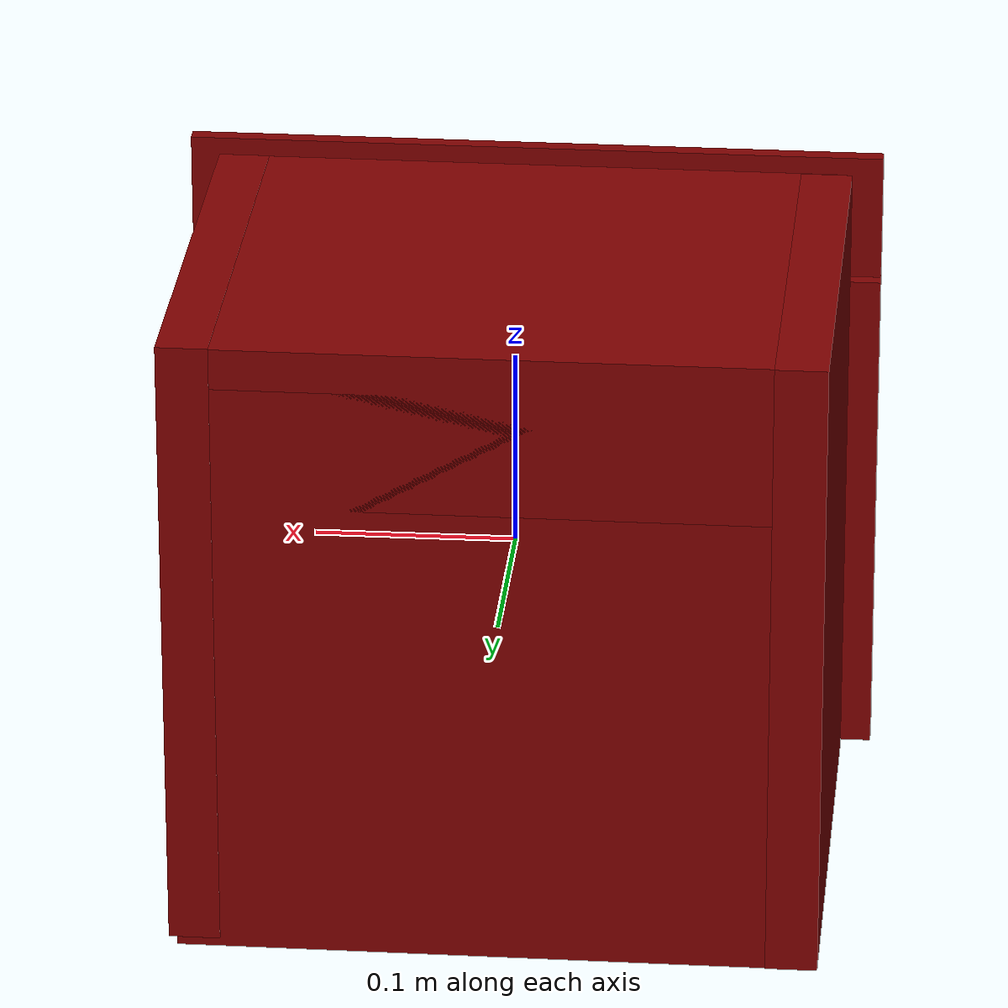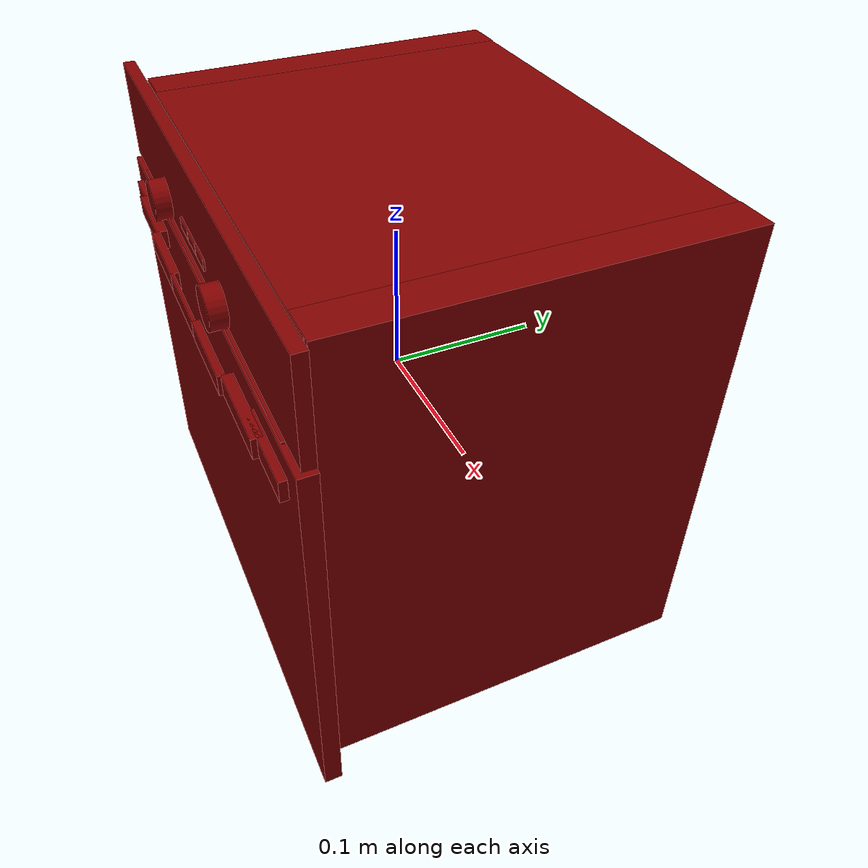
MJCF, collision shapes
<mujoco model="model">
  <compiler angle="radian"/>
  <asset>
    <mesh file="visuals/Body001.obj" name="Body001_vis"/>
    <mesh file="visuals/Button001.obj" name="Button001_vis"/>
    <mesh file="visuals/Button002.obj" name="Button002_vis"/>
    <mesh file="visuals/Button003.obj" name="Button003_vis"/>
    <mesh file="visuals/Door001.obj" name="Door001_vis"/>
    <mesh file="visuals/Door001_Clear.obj" name="Door001_Clear_vis"/>
    <mesh file="visuals/Knob001.obj" name="Knob001_vis"/>
    <mesh file="visuals/Knob002.obj" name="Knob002_vis"/>
    <mesh file="visuals/Shelf001.obj" name="Shelf001_vis"/>
    <texture file="visuals/T_BC001.png" name="Body001_material" type="2d"/>
    <material name="Body001_material" rgba="1 1 1 1.0" texture="Body001_material" shininess="0.5" specular="1"/>
    <texture file="visuals/T_BC001.png" name="Button001_material" type="2d"/>
    <material name="Button001_material" rgba="1 1 1 1.0" texture="Button001_material" shininess="0.5" specular="0.3103448502657381"/>
    <texture file="visuals/T_BC001.png" name="Button002_material" type="2d"/>
    <material name="Button002_material" rgba="1 1 1 1.0" texture="Button002_material" shininess="0.5" specular="0.3103448502657381"/>
    <texture file="visuals/T_BC001.png" name="Button003_material" type="2d"/>
    <material name="Button003_material" rgba="1 1 1 1.0" texture="Button003_material" shininess="0.5" specular="0.3103448502657381"/>
    <texture file="visuals/T_BC001.png" name="Door001_material" type="2d"/>
    <material name="Door001_material" rgba="1 1 1 1.0" texture="Door001_material" shininess="0.5" specular="1"/>
    <texture file="visuals/T_BC001.png" name="Door001_Clear_material" type="2d"/>
    <material name="Door001_Clear_material" rgba="1 1 1 0.8857143521308899" texture="Door001_Clear_material" shininess="0.5" specular="1"/>
    <texture file="visuals/T_BC001.png" name="Knob001_material" type="2d"/>
    <material name="Knob001_material" rgba="1 1 1 1.0" texture="Knob001_material" shininess="0.5" specular="1"/>
    <texture file="visuals/T_BC001.png" name="Knob002_material" type="2d"/>
    <material name="Knob002_material" rgba="1 1 1 1.0" texture="Knob002_material" shininess="0.5" specular="1"/>
    <texture file="visuals/T_BC001.png" name="Shelf001_material" type="2d"/>
    <material name="Shelf001_material" rgba="1 1 1 1.0" texture="Shelf001_material" shininess="0.5" specular="3"/>
  </asset>
  <default>
    <default class="visual">
      <geom conaffinity="0" contype="0" group="1" type="mesh"/>
    </default>
    <default class="collision">
      <geom group="0" rgba="0.5 0 0 0.5"/>
    </default>
    <default class="spawn">
      <geom group="0" rgba="1 1 1 0.5" contype="0" conaffinity="0"/>
      <site group="0" rgba="1 1 1 0.5"/>
    </default>
    <default class="region">
      <geom group="1" conaffinity="0" contype="0" rgba="0 1 0 0"/>
    </default>
  </default>
  <worldbody>
    <body>
      <body name="object">
        <geom mesh="Body001_vis" type="mesh" solimp="0.998 0.998 0.001" solref="0.001 1" density="100" friction="0.95 0.3 0.1" class="visual" material="Body001_material"/>
        <geom class="collision" type="box" pos="-0.14694291353225708 0.012750577181577682 -0.00334759964607656" size="0.012819831259548664 0.12219409644603729 0.1602325737476349" quat="1.0 0.0 0.0 0.0"/>
        <geom class="collision" type="box" pos="0.1472516655921936 0.012198932468891144 -0.0011717865709215403" size="0.012671329081058502 0.12216460704803467 0.1582917422056198" quat="1.0 0.0 0.0 0.0"/>
        <geom class="collision" type="box" pos="-0.00015041633741930127 0.008612207137048244 -0.1385604292154312" size="0.1559477150440216 0.11865023523569107 0.0260308850556612" quat="1.0 0.0 0.0 0.0"/>
        <geom class="collision" type="box" pos="-0.00015041633741930127 0.011971995234489441 0.11586324870586395" size="0.1559477150440216 0.12222649902105331 0.04095923528075218" quat="1.0 0.0 0.0 0.0"/>
        <geom class="collision" type="box" pos="-0.00015040917787700891 -0.11778897792100906 0.1322319209575653" size="0.1749154031276703 0.0038846442475914955 0.032097894698381424" quat="1.0 0.0 0.0 0.0"/>
        <geom class="collision" type="box" pos="-0.00015041633741930127 0.10578195750713348 -0.013721893541514874" size="0.1559477150440216 0.028416527435183525 0.1499803215265274" quat="1.0 0.0 0.0 0.0"/>
        <geom class="collision" type="box" pos="0.12764011323451996 -0.018886230885982513 -0.07071436196565628" size="0.012532178312540054 0.07843343913555145 0.04441990703344345" quat="1.0 0.0 0.0 0.0"/>
        <geom class="collision" type="box" pos="0.12764011323451996 -0.018886230885982513 0.024377955123782158" size="0.012532178312540054 0.07843343913555145 0.021426906809210777" quat="1.0 0.0 0.0 0.0"/>
        <geom class="collision" type="box" pos="-0.12045875191688538 -0.018886230885982513 0.024377955123782158" size="0.012532178312540054 0.07843343913555145 0.021426906809210777" quat="1.0 0.0 0.0 0.0"/>
        <geom class="collision" type="box" pos="-0.12045875191688538 -0.018886230885982513 -0.07071436196565628" size="0.012532178312540054 0.07843343913555145 0.04441990703344345" quat="1.0 0.0 0.0 0.0"/>
        <body name="Button001">
          <joint axis="0.0 1.0 0.0" pos="-0.017795823514461517 -0.12319399416446686 0.1212785542011261" limited="true" name="Button001_joint" range="0.0 0.002" type="slide" damping="1" frictionloss="1" armature=".01" stiffness="0.05"/>
          <geom mesh="Button001_vis" type="mesh" solimp="0.998 0.998 0.001" solref="0.001 1" density="100" friction="0.95 0.3 0.1" class="visual" material="Button001_material"/>
          <geom class="collision" type="box" pos="-0.017794279381632805 -0.12372104078531265 0.12122265994548798" size="0.008444385603070259 0.000539564061909914 0.0036061047576367855" quat="1.0 0.0 0.0 0.0"/>
        </body>
        <body name="Button002">
          <joint axis="0.0 1.0 0.0" pos="-4.991888999938965e-07 -0.12319400906562805 0.12127856910228729" limited="true" name="Button002_joint" range="0.0 0.002" type="slide" damping="1" frictionloss="1" armature=".01" stiffness="0.05"/>
          <geom mesh="Button002_vis" type="mesh" solimp="0.998 0.998 0.001" solref="0.001 1" density="100" friction="0.95 0.3 0.1" class="visual" material="Button002_material"/>
          <geom class="collision" type="box" pos="-7.155741332098842e-05 -0.12372104078531265 0.12122265994548798" size="0.008444385603070259 0.000539564061909914 0.0036061047576367855" quat="1.0 0.0 0.0 0.0"/>
        </body>
        <body name="Button003">
          <joint axis="0.0 1.0 0.0" pos="0.017794843763113022 -0.12319400161504745 0.12127856910228729" limited="true" name="Button003_joint" range="0.0 0.002" type="slide" damping="1" frictionloss="1" armature=".01" stiffness="0.05"/>
          <geom mesh="Button003_vis" type="mesh" solimp="0.998 0.998 0.001" solref="0.001 1" density="100" friction="0.95 0.3 0.1" class="visual" material="Button003_material"/>
          <geom class="collision" type="box" pos="0.017610279843211174 -0.12372104078531265 0.12122265994548798" size="0.008444385603070259 0.000539564061909914 0.0036061047576367855" quat="1.0 0.0 0.0 0.0"/>
        </body>
        <body name="Door001">
          <joint axis="1.0 0.0 0.0" pos="0.0 -0.12350936233997345 -0.16286322474479675" limited="true" name="Door001_joint" range="0.0 1.15" type="hinge" damping="5" frictionloss="1" armature=".01" stiffness="0.05"/>
          <geom mesh="Door001_vis" type="mesh" solimp="0.998 0.998 0.001" solref="0.001 1" density="100" friction="0.95 0.3 0.1" class="visual" material="Door001_material"/>
          <geom class="collision" type="box" pos="0.00019244407303631306 -0.11891181766986847 -0.03230622410774231" size="0.17513738572597504 0.005447333678603172 0.12949751317501068" quat="1.0 0.0 0.0 0.0"/>
          <geom class="collision" type="box" pos="-0.00693929847329855 -0.13323676586151123 0.07717180252075195" size="0.027082523331046104 0.0009965862846001983 0.0064217871986329556" quat="1.0 0.0 0.0 0.0"/>
          <geom class="collision" type="box" pos="0.046901315450668335 -0.1322057694196701 0.07717180252075195" size="0.027099810540676117 0.0022278695832937956 0.0064217871986329556" quat="1.0 0.0 0.0 0.0"/>
          <geom class="collision" type="box" pos="0.1007419228553772 -0.12899823486804962 0.07717180252075195" size="0.027069982141256332 0.003278932999819517 0.0064217871986329556" quat="1.0 0.0 0.0 0.0"/>
          <geom class="collision" type="box" pos="0.13338996469974518 -0.12579071521759033 0.07717180252075195" size="0.027069982141256332 0.0032789327669888735 0.0064217871986329556" quat="1.0 0.0 0.0 0.0"/>
          <geom class="collision" type="box" pos="-0.06071626394987106 -0.13164573907852173 0.07717180252075195" size="0.027096031233668327 0.002500436967238784 0.0064217871986329556" quat="1.0 0.0 0.0 0.0"/>
          <geom class="collision" type="box" pos="-0.11417501419782639 -0.1272704005241394 0.07717180252075195" size="0.027037203311920166 0.0038381461054086685 0.0064217871986329556" quat="1.0 0.0 0.0 0.0"/>
          <geom class="collision" type="box" pos="-0.1380939930677414 -0.12611569464206696 0.07717180252075195" size="0.027100756764411926 0.0019289811607450247 0.0064217871986329556" quat="1.0 0.0 0.0 0.0"/>
          <body name="Door001_Clear">
            <geom mesh="Door001_Clear_vis" type="mesh" solimp="0.998 0.998 0.001" solref="0.001 1" density="100" friction="0.95 0.3 0.1" class="visual" material="Door001_Clear_material"/>
            <geom class="collision" type="box" pos="0.0011835433542728424 -0.12067513167858124 -0.004837300628423691" size="0.1499202698469162 0.002540676388889551 0.10333734005689621" quat="1.0 0.0 0.0 0.0"/>
          </body>
        </body>
        <body name="Knob001">
          <joint axis="0.0 1.0 0.0" pos="0.06248302757740021 -0.12827423214912415 0.11808079481124878" limited="true" name="Knob001_joint" range="0.0 5.585053606381854" type="hinge" damping="0.05" armature="0.001"/>
          <geom mesh="Knob001_vis" type="mesh" solimp="0.998 0.998 0.001" solref="0.001 1" density="100" friction="0.95 0.3 0.1" class="visual" material="Knob001_material"/>
          <geom class="collision" type="cylinder" pos="0.06243307888507843 -0.1288110911846161 0.1189107596874237" size="0.01255255751311779 0.005151980556547642" quat="0.7071067094802856 0.70710688829422 -1.5700925641616852e-16 1.2790027470567158e-23"/>
        </body>
        <body name="Knob002">
          <joint axis="0.0 1.0 0.0" pos="-0.06284980475902557 -0.12827423214912415 0.11876125633716583" limited="true" name="Knob002_joint" range="0.0 5.235987755982989" type="hinge" damping="0.05" armature="0.001"/>
          <geom mesh="Knob002_vis" type="mesh" solimp="0.998 0.998 0.001" solref="0.001 1" density="100" friction="0.95 0.3 0.1" class="visual" material="Knob002_material"/>
          <geom class="collision" type="cylinder" pos="-0.06284209340810776 -0.1288110911846161 0.1189107596874237" size="0.01255255751311779 0.005151980556547642" quat="0.7071067094802856 0.70710688829422 -1.5700925641616852e-16 1.2790027470567158e-23"/>
        </body>
        <body name="Shelf001">
          <joint axis="0.0 -1.0 0.0" pos="0.0 -0.021017298102378845 -0.00396044971421361" limited="true" name="Shelf001_joint" range="0.0 0.13" type="slide" damping="1" frictionloss="1" armature=".01" stiffness="0.05"/>
          <geom mesh="Shelf001_vis" type="mesh" solimp="0.998 0.998 0.001" solref="0.001 1" density="100" friction="0.95 0.3 0.1" class="visual" material="Shelf001_material"/>
          <geom class="collision" type="box" pos="1.0339757656912846e-25 -0.021587956696748734 -0.004103499464690685" size="0.12635132670402527 0.06850232183933258 0.003349081613123417" quat="1.0 0.0 0.0 0.0"/>
        </body>
        <geom class="region" name="reg_main" type="box" pos="3.725290298461914e-09 0.005226567387580872 0.0" size="0.17480143904685974 0.12887606024742126 0.16286075115203857"/>
        <geom class="region" name="reg_int" type="box" pos="0.00015791505575180054 -0.012194588780403137 -0.018789339810609818" size="0.13119568675756454 0.088674396276474 0.09030203148722649"/>
      </body>
    </body>
  </worldbody>
  <actuator>
    <motor name="Button001_joint_actuator" joint="Button001_joint" gear="0.5"/>
    <motor name="Button002_joint_actuator" joint="Button002_joint" gear="0.5"/>
    <motor name="Button003_joint_actuator" joint="Button003_joint" gear="0.5"/>
    <motor name="Door001_joint_actuator" joint="Door001_joint" gear="10"/>
    <motor name="Knob001_joint_actuator" joint="Knob001_joint" gear="10"/>
    <motor name="Knob002_joint_actuator" joint="Knob002_joint" gear="10"/>
    <motor name="Shelf001_joint_actuator" joint="Shelf001_joint" gear="10"/>
  </actuator>
</mujoco>
